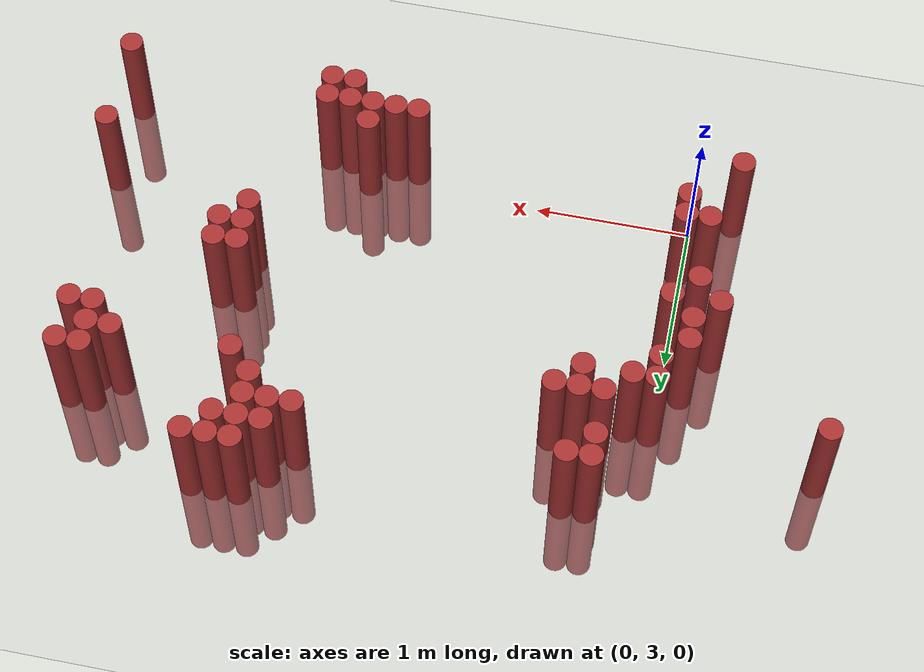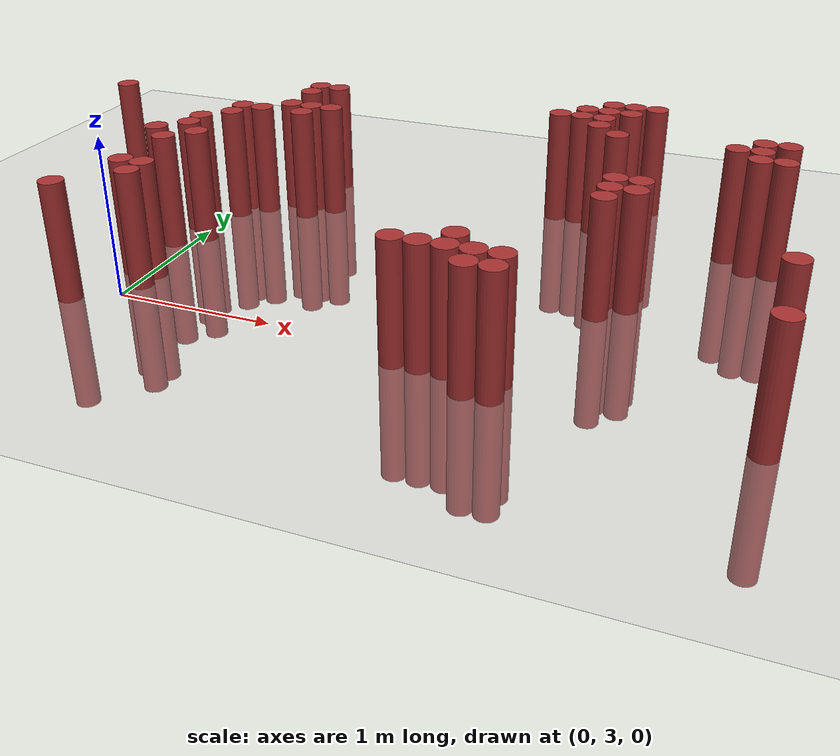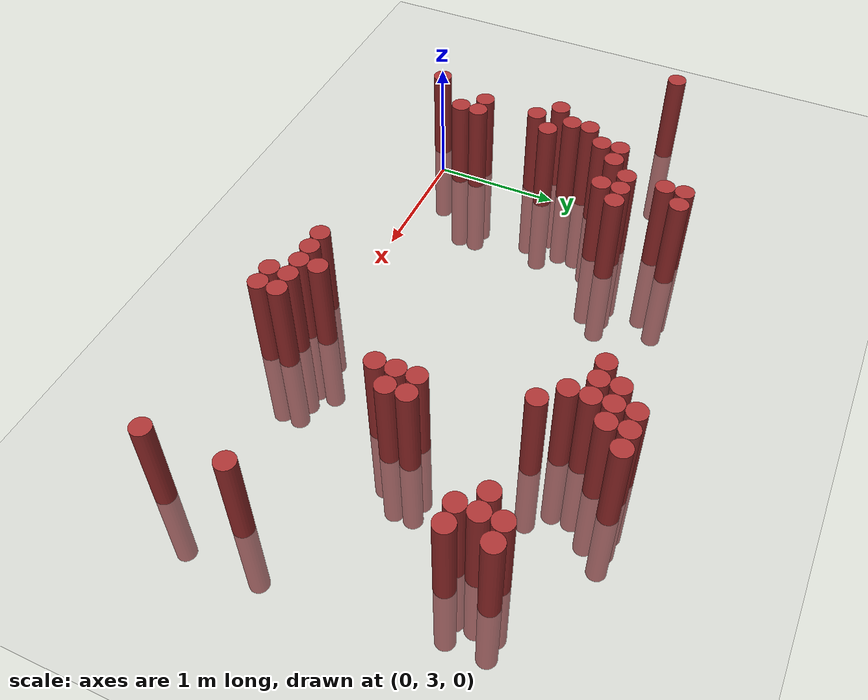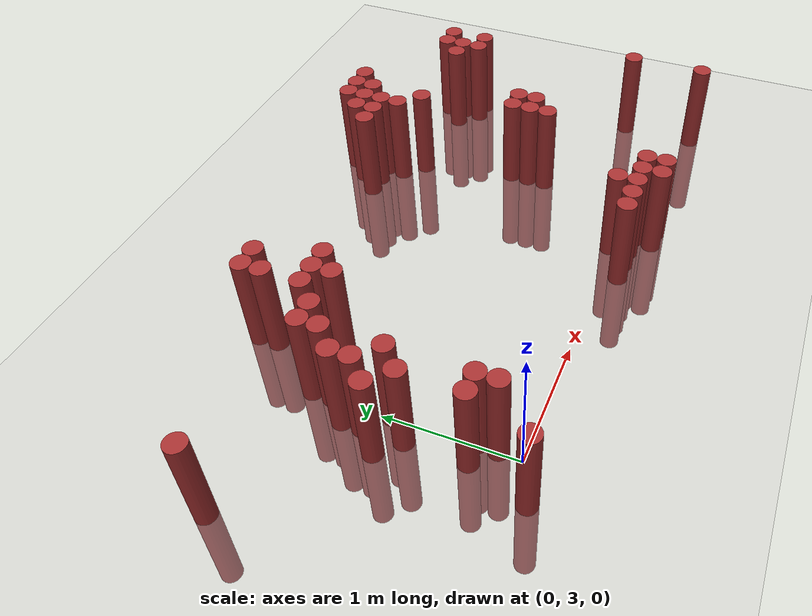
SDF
<sdf version="1.6">
 <world name="default">
  <model name="ground_plane">
   <static>1</static>
   <link name="link">
    <collision name="collision">
     <geometry><plane><normal>0 0 1</normal><size>100 100</size></plane></geometry>
     <surface><friction><ode><mu>100</mu><mu2>50</mu2></ode></friction></surface>
    </collision>
    <visual name="visual">
     <cast_shadows>0</cast_shadows>
     <geometry><plane><normal>0 0 1</normal><size>100 100</size></plane></geometry>
     <material>
      <script><uri>file://media/materials/scripts/gazebo.material</uri><name>Gazebo/Grey</name></script>
     </material>
    </visual>
   </link>
  </model>
  <model name="unit_cylinder_330">
   <static>1</static>
   <pose>-1.025000 4.675000 0.000000 0.000000 0.000000 0.000000</pose>
   <link name="link">
    <inertial>
     <mass>1</mass>
     <inertia><ixx>0.145833</ixx><ixy>0</ixy><ixz>0</ixz><iyy>0.145833</iyy><iyz>0</iyz><izz>0.125</izz></inertia>
    </inertial>
    <collision name="collision">
     <geometry><cylinder><radius>0.075000</radius><length>1.5</length></cylinder></geometry>
    </collision>
    <visual name="visual">
     <geometry><cylinder><radius>0.075000</radius><length>1.5</length></cylinder></geometry>
     <material>
      <ambient>0.648000 0.192000 0.192000 1</ambient>
      <diffuse>0.648000 0.192000 0.192000 1</diffuse>
     </material>
     <material>
      <script><name>Gazebo/Grey</name><uri>file://media/materials/scripts/gazebo.material</uri></script>
     </material>
    </visual>
   </link>
  </model>
  <model name="unit_cylinder_336">
   <static>1</static>
   <pose>-0.275000 2.875000 0.000000 0.000000 0.000000 0.000000</pose>
   <link name="link">
    <inertial>
     <mass>1</mass>
     <inertia><ixx>0.145833</ixx><ixy>0</ixy><ixz>0</ixz><iyy>0.145833</iyy><iyz>0</iyz><izz>0.125</izz></inertia>
    </inertial>
    <collision name="collision">
     <geometry><cylinder><radius>0.075000</radius><length>1.5</length></cylinder></geometry>
    </collision>
    <visual name="visual">
     <geometry><cylinder><radius>0.075000</radius><length>1.5</length></cylinder></geometry>
     <material>
      <ambient>0.648000 0.192000 0.192000 1</ambient>
      <diffuse>0.648000 0.192000 0.192000 1</diffuse>
     </material>
     <material>
      <script><name>Gazebo/Grey</name><uri>file://media/materials/scripts/gazebo.material</uri></script>
     </material>
    </visual>
   </link>
  </model>
  <model name="unit_cylinder_337">
   <static>1</static>
   <pose>-0.275000 3.925000 0.000000 0.000000 0.000000 0.000000</pose>
   <link name="link">
    <inertial>
     <mass>1</mass>
     <inertia><ixx>0.145833</ixx><ixy>0</ixy><ixz>0</ixz><iyy>0.145833</iyy><iyz>0</iyz><izz>0.125</izz></inertia>
    </inertial>
    <collision name="collision">
     <geometry><cylinder><radius>0.075000</radius><length>1.5</length></cylinder></geometry>
    </collision>
    <visual name="visual">
     <geometry><cylinder><radius>0.075000</radius><length>1.5</length></cylinder></geometry>
     <material>
      <ambient>0.648000 0.192000 0.192000 1</ambient>
      <diffuse>0.648000 0.192000 0.192000 1</diffuse>
     </material>
     <material>
      <script><name>Gazebo/Grey</name><uri>file://media/materials/scripts/gazebo.material</uri></script>
     </material>
    </visual>
   </link>
  </model>
  <model name="unit_cylinder_341">
   <static>1</static>
   <pose>-0.125000 3.325000 0.000000 0.000000 0.000000 0.000000</pose>
   <link name="link">
    <inertial>
     <mass>1</mass>
     <inertia><ixx>0.145833</ixx><ixy>0</ixy><ixz>0</ixz><iyy>0.145833</iyy><iyz>0</iyz><izz>0.125</izz></inertia>
    </inertial>
    <collision name="collision">
     <geometry><cylinder><radius>0.075000</radius><length>1.5</length></cylinder></geometry>
    </collision>
    <visual name="visual">
     <geometry><cylinder><radius>0.075000</radius><length>1.5</length></cylinder></geometry>
     <material>
      <ambient>0.648000 0.192000 0.192000 1</ambient>
      <diffuse>0.648000 0.192000 0.192000 1</diffuse>
     </material>
     <material>
      <script><name>Gazebo/Grey</name><uri>file://media/materials/scripts/gazebo.material</uri></script>
     </material>
    </visual>
   </link>
  </model>
  <model name="unit_cylinder_342">
   <static>1</static>
   <pose>-0.125000 3.775000 0.000000 0.000000 0.000000 0.000000</pose>
   <link name="link">
    <inertial>
     <mass>1</mass>
     <inertia><ixx>0.145833</ixx><ixy>0</ixy><ixz>0</ixz><iyy>0.145833</iyy><iyz>0</iyz><izz>0.125</izz></inertia>
    </inertial>
    <collision name="collision">
     <geometry><cylinder><radius>0.075000</radius><length>1.5</length></cylinder></geometry>
    </collision>
    <visual name="visual">
     <geometry><cylinder><radius>0.075000</radius><length>1.5</length></cylinder></geometry>
     <material>
      <ambient>0.648000 0.192000 0.192000 1</ambient>
      <diffuse>0.648000 0.192000 0.192000 1</diffuse>
     </material>
     <material>
      <script><name>Gazebo/Grey</name><uri>file://media/materials/scripts/gazebo.material</uri></script>
     </material>
    </visual>
   </link>
  </model>
  <model name="unit_cylinder_343">
   <static>1</static>
   <pose>-0.125000 4.075000 0.000000 0.000000 0.000000 0.000000</pose>
   <link name="link">
    <inertial>
     <mass>1</mass>
     <inertia><ixx>0.145833</ixx><ixy>0</ixy><ixz>0</ixz><iyy>0.145833</iyy><iyz>0</iyz><izz>0.125</izz></inertia>
    </inertial>
    <collision name="collision">
     <geometry><cylinder><radius>0.075000</radius><length>1.5</length></cylinder></geometry>
    </collision>
    <visual name="visual">
     <geometry><cylinder><radius>0.075000</radius><length>1.5</length></cylinder></geometry>
     <material>
      <ambient>0.648000 0.192000 0.192000 1</ambient>
      <diffuse>0.648000 0.192000 0.192000 1</diffuse>
     </material>
     <material>
      <script><name>Gazebo/Grey</name><uri>file://media/materials/scripts/gazebo.material</uri></script>
     </material>
    </visual>
   </link>
  </model>
  <model name="unit_cylinder_344">
   <static>1</static>
   <pose>-0.125000 4.225000 0.000000 0.000000 0.000000 0.000000</pose>
   <link name="link">
    <inertial>
     <mass>1</mass>
     <inertia><ixx>0.145833</ixx><ixy>0</ixy><ixz>0</ixz><iyy>0.145833</iyy><iyz>0</iyz><izz>0.125</izz></inertia>
    </inertial>
    <collision name="collision">
     <geometry><cylinder><radius>0.075000</radius><length>1.5</length></cylinder></geometry>
    </collision>
    <visual name="visual">
     <geometry><cylinder><radius>0.075000</radius><length>1.5</length></cylinder></geometry>
     <material>
      <ambient>0.648000 0.192000 0.192000 1</ambient>
      <diffuse>0.648000 0.192000 0.192000 1</diffuse>
     </material>
     <material>
      <script><name>Gazebo/Grey</name><uri>file://media/materials/scripts/gazebo.material</uri></script>
     </material>
    </visual>
   </link>
  </model>
  <model name="unit_cylinder_346">
   <static>1</static>
   <pose>0.025000 3.175000 0.000000 0.000000 0.000000 0.000000</pose>
   <link name="link">
    <inertial>
     <mass>1</mass>
     <inertia><ixx>0.145833</ixx><ixy>0</ixy><ixz>0</ixz><iyy>0.145833</iyy><iyz>0</iyz><izz>0.125</izz></inertia>
    </inertial>
    <collision name="collision">
     <geometry><cylinder><radius>0.075000</radius><length>1.5</length></cylinder></geometry>
    </collision>
    <visual name="visual">
     <geometry><cylinder><radius>0.075000</radius><length>1.5</length></cylinder></geometry>
     <material>
      <ambient>0.648000 0.192000 0.192000 1</ambient>
      <diffuse>0.648000 0.192000 0.192000 1</diffuse>
     </material>
     <material>
      <script><name>Gazebo/Grey</name><uri>file://media/materials/scripts/gazebo.material</uri></script>
     </material>
    </visual>
   </link>
  </model>
  <model name="unit_cylinder_347">
   <static>1</static>
   <pose>0.025000 3.325000 0.000000 0.000000 0.000000 0.000000</pose>
   <link name="link">
    <inertial>
     <mass>1</mass>
     <inertia><ixx>0.145833</ixx><ixy>0</ixy><ixz>0</ixz><iyy>0.145833</iyy><iyz>0</iyz><izz>0.125</izz></inertia>
    </inertial>
    <collision name="collision">
     <geometry><cylinder><radius>0.075000</radius><length>1.5</length></cylinder></geometry>
    </collision>
    <visual name="visual">
     <geometry><cylinder><radius>0.075000</radius><length>1.5</length></cylinder></geometry>
     <material>
      <ambient>0.648000 0.192000 0.192000 1</ambient>
      <diffuse>0.648000 0.192000 0.192000 1</diffuse>
     </material>
     <material>
      <script><name>Gazebo/Grey</name><uri>file://media/materials/scripts/gazebo.material</uri></script>
     </material>
    </visual>
   </link>
  </model>
  <model name="unit_cylinder_348">
   <static>1</static>
   <pose>0.025000 3.925000 0.000000 0.000000 0.000000 0.000000</pose>
   <link name="link">
    <inertial>
     <mass>1</mass>
     <inertia><ixx>0.145833</ixx><ixy>0</ixy><ixz>0</ixz><iyy>0.145833</iyy><iyz>0</iyz><izz>0.125</izz></inertia>
    </inertial>
    <collision name="collision">
     <geometry><cylinder><radius>0.075000</radius><length>1.5</length></cylinder></geometry>
    </collision>
    <visual name="visual">
     <geometry><cylinder><radius>0.075000</radius><length>1.5</length></cylinder></geometry>
     <material>
      <ambient>0.648000 0.192000 0.192000 1</ambient>
      <diffuse>0.648000 0.192000 0.192000 1</diffuse>
     </material>
     <material>
      <script><name>Gazebo/Grey</name><uri>file://media/materials/scripts/gazebo.material</uri></script>
     </material>
    </visual>
   </link>
  </model>
  <model name="unit_cylinder_349">
   <static>1</static>
   <pose>0.025000 4.375000 0.000000 0.000000 0.000000 0.000000</pose>
   <link name="link">
    <inertial>
     <mass>1</mass>
     <inertia><ixx>0.145833</ixx><ixy>0</ixy><ixz>0</ixz><iyy>0.145833</iyy><iyz>0</iyz><izz>0.125</izz></inertia>
    </inertial>
    <collision name="collision">
     <geometry><cylinder><radius>0.075000</radius><length>1.5</length></cylinder></geometry>
    </collision>
    <visual name="visual">
     <geometry><cylinder><radius>0.075000</radius><length>1.5</length></cylinder></geometry>
     <material>
      <ambient>0.648000 0.192000 0.192000 1</ambient>
      <diffuse>0.648000 0.192000 0.192000 1</diffuse>
     </material>
     <material>
      <script><name>Gazebo/Grey</name><uri>file://media/materials/scripts/gazebo.material</uri></script>
     </material>
    </visual>
   </link>
  </model>
  <model name="unit_cylinder_350">
   <static>1</static>
   <pose>0.025000 4.525000 0.000000 0.000000 0.000000 0.000000</pose>
   <link name="link">
    <inertial>
     <mass>1</mass>
     <inertia><ixx>0.145833</ixx><ixy>0</ixy><ixz>0</ixz><iyy>0.145833</iyy><iyz>0</iyz><izz>0.125</izz></inertia>
    </inertial>
    <collision name="collision">
     <geometry><cylinder><radius>0.075000</radius><length>1.5</length></cylinder></geometry>
    </collision>
    <visual name="visual">
     <geometry><cylinder><radius>0.075000</radius><length>1.5</length></cylinder></geometry>
     <material>
      <ambient>0.648000 0.192000 0.192000 1</ambient>
      <diffuse>0.648000 0.192000 0.192000 1</diffuse>
     </material>
     <material>
      <script><name>Gazebo/Grey</name><uri>file://media/materials/scripts/gazebo.material</uri></script>
     </material>
    </visual>
   </link>
  </model>
  <model name="unit_cylinder_351">
   <static>1</static>
   <pose>0.175000 4.525000 0.000000 0.000000 0.000000 0.000000</pose>
   <link name="link">
    <inertial>
     <mass>1</mass>
     <inertia><ixx>0.145833</ixx><ixy>0</ixy><ixz>0</ixz><iyy>0.145833</iyy><iyz>0</iyz><izz>0.125</izz></inertia>
    </inertial>
    <collision name="collision">
     <geometry><cylinder><radius>0.075000</radius><length>1.5</length></cylinder></geometry>
    </collision>
    <visual name="visual">
     <geometry><cylinder><radius>0.075000</radius><length>1.5</length></cylinder></geometry>
     <material>
      <ambient>0.648000 0.192000 0.192000 1</ambient>
      <diffuse>0.648000 0.192000 0.192000 1</diffuse>
     </material>
     <material>
      <script><name>Gazebo/Grey</name><uri>file://media/materials/scripts/gazebo.material</uri></script>
     </material>
    </visual>
   </link>
  </model>
  <model name="unit_cylinder_352">
   <static>1</static>
   <pose>0.325000 4.675000 0.000000 0.000000 0.000000 0.000000</pose>
   <link name="link">
    <inertial>
     <mass>1</mass>
     <inertia><ixx>0.145833</ixx><ixy>0</ixy><ixz>0</ixz><iyy>0.145833</iyy><iyz>0</iyz><izz>0.125</izz></inertia>
    </inertial>
    <collision name="collision">
     <geometry><cylinder><radius>0.075000</radius><length>1.5</length></cylinder></geometry>
    </collision>
    <visual name="visual">
     <geometry><cylinder><radius>0.075000</radius><length>1.5</length></cylinder></geometry>
     <material>
      <ambient>0.648000 0.192000 0.192000 1</ambient>
      <diffuse>0.648000 0.192000 0.192000 1</diffuse>
     </material>
     <material>
      <script><name>Gazebo/Grey</name><uri>file://media/materials/scripts/gazebo.material</uri></script>
     </material>
    </visual>
   </link>
  </model>
  <model name="unit_cylinder_353">
   <static>1</static>
   <pose>0.325000 4.975000 0.000000 0.000000 0.000000 0.000000</pose>
   <link name="link">
    <inertial>
     <mass>1</mass>
     <inertia><ixx>0.145833</ixx><ixy>0</ixy><ixz>0</ixz><iyy>0.145833</iyy><iyz>0</iyz><izz>0.125</izz></inertia>
    </inertial>
    <collision name="collision">
     <geometry><cylinder><radius>0.075000</radius><length>1.5</length></cylinder></geometry>
    </collision>
    <visual name="visual">
     <geometry><cylinder><radius>0.075000</radius><length>1.5</length></cylinder></geometry>
     <material>
      <ambient>0.648000 0.192000 0.192000 1</ambient>
      <diffuse>0.648000 0.192000 0.192000 1</diffuse>
     </material>
     <material>
      <script><name>Gazebo/Grey</name><uri>file://media/materials/scripts/gazebo.material</uri></script>
     </material>
    </visual>
   </link>
  </model>
  <model name="unit_cylinder_354">
   <static>1</static>
   <pose>0.325000 5.125000 0.000000 0.000000 0.000000 0.000000</pose>
   <link name="link">
    <inertial>
     <mass>1</mass>
     <inertia><ixx>0.145833</ixx><ixy>0</ixy><ixz>0</ixz><iyy>0.145833</iyy><iyz>0</iyz><izz>0.125</izz></inertia>
    </inertial>
    <collision name="collision">
     <geometry><cylinder><radius>0.075000</radius><length>1.5</length></cylinder></geometry>
    </collision>
    <visual name="visual">
     <geometry><cylinder><radius>0.075000</radius><length>1.5</length></cylinder></geometry>
     <material>
      <ambient>0.648000 0.192000 0.192000 1</ambient>
      <diffuse>0.648000 0.192000 0.192000 1</diffuse>
     </material>
     <material>
      <script><name>Gazebo/Grey</name><uri>file://media/materials/scripts/gazebo.material</uri></script>
     </material>
    </visual>
   </link>
  </model>
  <model name="unit_cylinder_355">
   <static>1</static>
   <pose>0.475000 4.525000 0.000000 0.000000 0.000000 0.000000</pose>
   <link name="link">
    <inertial>
     <mass>1</mass>
     <inertia><ixx>0.145833</ixx><ixy>0</ixy><ixz>0</ixz><iyy>0.145833</iyy><iyz>0</iyz><izz>0.125</izz></inertia>
    </inertial>
    <collision name="collision">
     <geometry><cylinder><radius>0.075000</radius><length>1.5</length></cylinder></geometry>
    </collision>
    <visual name="visual">
     <geometry><cylinder><radius>0.075000</radius><length>1.5</length></cylinder></geometry>
     <material>
      <ambient>0.648000 0.192000 0.192000 1</ambient>
      <diffuse>0.648000 0.192000 0.192000 1</diffuse>
     </material>
     <material>
      <script><name>Gazebo/Grey</name><uri>file://media/materials/scripts/gazebo.material</uri></script>
     </material>
    </visual>
   </link>
  </model>
  <model name="unit_cylinder_356">
   <static>1</static>
   <pose>0.475000 4.675000 0.000000 0.000000 0.000000 0.000000</pose>
   <link name="link">
    <inertial>
     <mass>1</mass>
     <inertia><ixx>0.145833</ixx><ixy>0</ixy><ixz>0</ixz><iyy>0.145833</iyy><iyz>0</iyz><izz>0.125</izz></inertia>
    </inertial>
    <collision name="collision">
     <geometry><cylinder><radius>0.075000</radius><length>1.5</length></cylinder></geometry>
    </collision>
    <visual name="visual">
     <geometry><cylinder><radius>0.075000</radius><length>1.5</length></cylinder></geometry>
     <material>
      <ambient>0.648000 0.192000 0.192000 1</ambient>
      <diffuse>0.648000 0.192000 0.192000 1</diffuse>
     </material>
     <material>
      <script><name>Gazebo/Grey</name><uri>file://media/materials/scripts/gazebo.material</uri></script>
     </material>
    </visual>
   </link>
  </model>
  <model name="unit_cylinder_357">
   <static>1</static>
   <pose>0.475000 5.125000 0.000000 0.000000 0.000000 0.000000</pose>
   <link name="link">
    <inertial>
     <mass>1</mass>
     <inertia><ixx>0.145833</ixx><ixy>0</ixy><ixz>0</ixz><iyy>0.145833</iyy><iyz>0</iyz><izz>0.125</izz></inertia>
    </inertial>
    <collision name="collision">
     <geometry><cylinder><radius>0.075000</radius><length>1.5</length></cylinder></geometry>
    </collision>
    <visual name="visual">
     <geometry><cylinder><radius>0.075000</radius><length>1.5</length></cylinder></geometry>
     <material>
      <ambient>0.648000 0.192000 0.192000 1</ambient>
      <diffuse>0.648000 0.192000 0.192000 1</diffuse>
     </material>
     <material>
      <script><name>Gazebo/Grey</name><uri>file://media/materials/scripts/gazebo.material</uri></script>
     </material>
    </visual>
   </link>
  </model>
  <model name="unit_cylinder_360">
   <static>1</static>
   <pose>0.625000 4.675000 0.000000 0.000000 0.000000 0.000000</pose>
   <link name="link">
    <inertial>
     <mass>1</mass>
     <inertia><ixx>0.145833</ixx><ixy>0</ixy><ixz>0</ixz><iyy>0.145833</iyy><iyz>0</iyz><izz>0.125</izz></inertia>
    </inertial>
    <collision name="collision">
     <geometry><cylinder><radius>0.075000</radius><length>1.5</length></cylinder></geometry>
    </collision>
    <visual name="visual">
     <geometry><cylinder><radius>0.075000</radius><length>1.5</length></cylinder></geometry>
     <material>
      <ambient>0.648000 0.192000 0.192000 1</ambient>
      <diffuse>0.648000 0.192000 0.192000 1</diffuse>
     </material>
     <material>
      <script><name>Gazebo/Grey</name><uri>file://media/materials/scripts/gazebo.material</uri></script>
     </material>
    </visual>
   </link>
  </model>
  <model name="unit_cylinder_380">
   <static>1</static>
   <pose>1.825000 2.875000 0.000000 0.000000 0.000000 0.000000</pose>
   <link name="link">
    <inertial>
     <mass>1</mass>
     <inertia><ixx>0.145833</ixx><ixy>0</ixy><ixz>0</ixz><iyy>0.145833</iyy><iyz>0</iyz><izz>0.125</izz></inertia>
    </inertial>
    <collision name="collision">
     <geometry><cylinder><radius>0.075000</radius><length>1.5</length></cylinder></geometry>
    </collision>
    <visual name="visual">
     <geometry><cylinder><radius>0.075000</radius><length>1.5</length></cylinder></geometry>
     <material>
      <ambient>0.648000 0.192000 0.192000 1</ambient>
      <diffuse>0.648000 0.192000 0.192000 1</diffuse>
     </material>
     <material>
      <script><name>Gazebo/Grey</name><uri>file://media/materials/scripts/gazebo.material</uri></script>
     </material>
    </visual>
   </link>
  </model>
  <model name="unit_cylinder_384">
   <static>1</static>
   <pose>1.975000 2.875000 0.000000 0.000000 0.000000 0.000000</pose>
   <link name="link">
    <inertial>
     <mass>1</mass>
     <inertia><ixx>0.145833</ixx><ixy>0</ixy><ixz>0</ixz><iyy>0.145833</iyy><iyz>0</iyz><izz>0.125</izz></inertia>
    </inertial>
    <collision name="collision">
     <geometry><cylinder><radius>0.075000</radius><length>1.5</length></cylinder></geometry>
    </collision>
    <visual name="visual">
     <geometry><cylinder><radius>0.075000</radius><length>1.5</length></cylinder></geometry>
     <material>
      <ambient>0.648000 0.192000 0.192000 1</ambient>
      <diffuse>0.648000 0.192000 0.192000 1</diffuse>
     </material>
     <material>
      <script><name>Gazebo/Grey</name><uri>file://media/materials/scripts/gazebo.material</uri></script>
     </material>
    </visual>
   </link>
  </model>
  <model name="unit_cylinder_387">
   <static>1</static>
   <pose>2.125000 2.875000 0.000000 0.000000 0.000000 0.000000</pose>
   <link name="link">
    <inertial>
     <mass>1</mass>
     <inertia><ixx>0.145833</ixx><ixy>0</ixy><ixz>0</ixz><iyy>0.145833</iyy><iyz>0</iyz><izz>0.125</izz></inertia>
    </inertial>
    <collision name="collision">
     <geometry><cylinder><radius>0.075000</radius><length>1.5</length></cylinder></geometry>
    </collision>
    <visual name="visual">
     <geometry><cylinder><radius>0.075000</radius><length>1.5</length></cylinder></geometry>
     <material>
      <ambient>0.648000 0.192000 0.192000 1</ambient>
      <diffuse>0.648000 0.192000 0.192000 1</diffuse>
     </material>
     <material>
      <script><name>Gazebo/Grey</name><uri>file://media/materials/scripts/gazebo.material</uri></script>
     </material>
    </visual>
   </link>
  </model>
  <model name="unit_cylinder_388">
   <static>1</static>
   <pose>2.125000 3.025000 0.000000 0.000000 0.000000 0.000000</pose>
   <link name="link">
    <inertial>
     <mass>1</mass>
     <inertia><ixx>0.145833</ixx><ixy>0</ixy><ixz>0</ixz><iyy>0.145833</iyy><iyz>0</iyz><izz>0.125</izz></inertia>
    </inertial>
    <collision name="collision">
     <geometry><cylinder><radius>0.075000</radius><length>1.5</length></cylinder></geometry>
    </collision>
    <visual name="visual">
     <geometry><cylinder><radius>0.075000</radius><length>1.5</length></cylinder></geometry>
     <material>
      <ambient>0.648000 0.192000 0.192000 1</ambient>
      <diffuse>0.648000 0.192000 0.192000 1</diffuse>
     </material>
     <material>
      <script><name>Gazebo/Grey</name><uri>file://media/materials/scripts/gazebo.material</uri></script>
     </material>
    </visual>
   </link>
  </model>
  <model name="unit_cylinder_389">
   <static>1</static>
   <pose>2.125000 5.125000 0.000000 0.000000 0.000000 0.000000</pose>
   <link name="link">
    <inertial>
     <mass>1</mass>
     <inertia><ixx>0.145833</ixx><ixy>0</ixy><ixz>0</ixz><iyy>0.145833</iyy><iyz>0</iyz><izz>0.125</izz></inertia>
    </inertial>
    <collision name="collision">
     <geometry><cylinder><radius>0.075000</radius><length>1.5</length></cylinder></geometry>
    </collision>
    <visual name="visual">
     <geometry><cylinder><radius>0.075000</radius><length>1.5</length></cylinder></geometry>
     <material>
      <ambient>0.648000 0.192000 0.192000 1</ambient>
      <diffuse>0.648000 0.192000 0.192000 1</diffuse>
     </material>
     <material>
      <script><name>Gazebo/Grey</name><uri>file://media/materials/scripts/gazebo.material</uri></script>
     </material>
    </visual>
   </link>
  </model>
  <model name="unit_cylinder_391">
   <static>1</static>
   <pose>2.275000 2.725000 0.000000 0.000000 0.000000 0.000000</pose>
   <link name="link">
    <inertial>
     <mass>1</mass>
     <inertia><ixx>0.145833</ixx><ixy>0</ixy><ixz>0</ixz><iyy>0.145833</iyy><iyz>0</iyz><izz>0.125</izz></inertia>
    </inertial>
    <collision name="collision">
     <geometry><cylinder><radius>0.075000</radius><length>1.5</length></cylinder></geometry>
    </collision>
    <visual name="visual">
     <geometry><cylinder><radius>0.075000</radius><length>1.5</length></cylinder></geometry>
     <material>
      <ambient>0.648000 0.192000 0.192000 1</ambient>
      <diffuse>0.648000 0.192000 0.192000 1</diffuse>
     </material>
     <material>
      <script><name>Gazebo/Grey</name><uri>file://media/materials/scripts/gazebo.material</uri></script>
     </material>
    </visual>
   </link>
  </model>
  <model name="unit_cylinder_392">
   <static>1</static>
   <pose>2.275000 2.875000 0.000000 0.000000 0.000000 0.000000</pose>
   <link name="link">
    <inertial>
     <mass>1</mass>
     <inertia><ixx>0.145833</ixx><ixy>0</ixy><ixz>0</ixz><iyy>0.145833</iyy><iyz>0</iyz><izz>0.125</izz></inertia>
    </inertial>
    <collision name="collision">
     <geometry><cylinder><radius>0.075000</radius><length>1.5</length></cylinder></geometry>
    </collision>
    <visual name="visual">
     <geometry><cylinder><radius>0.075000</radius><length>1.5</length></cylinder></geometry>
     <material>
      <ambient>0.648000 0.192000 0.192000 1</ambient>
      <diffuse>0.648000 0.192000 0.192000 1</diffuse>
     </material>
     <material>
      <script><name>Gazebo/Grey</name><uri>file://media/materials/scripts/gazebo.material</uri></script>
     </material>
    </visual>
   </link>
  </model>
  <model name="unit_cylinder_393">
   <static>1</static>
   <pose>2.275000 5.125000 0.000000 0.000000 0.000000 0.000000</pose>
   <link name="link">
    <inertial>
     <mass>1</mass>
     <inertia><ixx>0.145833</ixx><ixy>0</ixy><ixz>0</ixz><iyy>0.145833</iyy><iyz>0</iyz><izz>0.125</izz></inertia>
    </inertial>
    <collision name="collision">
     <geometry><cylinder><radius>0.075000</radius><length>1.5</length></cylinder></geometry>
    </collision>
    <visual name="visual">
     <geometry><cylinder><radius>0.075000</radius><length>1.5</length></cylinder></geometry>
     <material>
      <ambient>0.648000 0.192000 0.192000 1</ambient>
      <diffuse>0.648000 0.192000 0.192000 1</diffuse>
     </material>
     <material>
      <script><name>Gazebo/Grey</name><uri>file://media/materials/scripts/gazebo.material</uri></script>
     </material>
    </visual>
   </link>
  </model>
  <model name="unit_cylinder_394">
   <static>1</static>
   <pose>2.275000 5.275000 0.000000 0.000000 0.000000 0.000000</pose>
   <link name="link">
    <inertial>
     <mass>1</mass>
     <inertia><ixx>0.145833</ixx><ixy>0</ixy><ixz>0</ixz><iyy>0.145833</iyy><iyz>0</iyz><izz>0.125</izz></inertia>
    </inertial>
    <collision name="collision">
     <geometry><cylinder><radius>0.075000</radius><length>1.5</length></cylinder></geometry>
    </collision>
    <visual name="visual">
     <geometry><cylinder><radius>0.075000</radius><length>1.5</length></cylinder></geometry>
     <material>
      <ambient>0.648000 0.192000 0.192000 1</ambient>
      <diffuse>0.648000 0.192000 0.192000 1</diffuse>
     </material>
     <material>
      <script><name>Gazebo/Grey</name><uri>file://media/materials/scripts/gazebo.material</uri></script>
     </material>
    </visual>
   </link>
  </model>
  <model name="unit_cylinder_395">
   <static>1</static>
   <pose>2.425000 2.725000 0.000000 0.000000 0.000000 0.000000</pose>
   <link name="link">
    <inertial>
     <mass>1</mass>
     <inertia><ixx>0.145833</ixx><ixy>0</ixy><ixz>0</ixz><iyy>0.145833</iyy><iyz>0</iyz><izz>0.125</izz></inertia>
    </inertial>
    <collision name="collision">
     <geometry><cylinder><radius>0.075000</radius><length>1.5</length></cylinder></geometry>
    </collision>
    <visual name="visual">
     <geometry><cylinder><radius>0.075000</radius><length>1.5</length></cylinder></geometry>
     <material>
      <ambient>0.648000 0.192000 0.192000 1</ambient>
      <diffuse>0.648000 0.192000 0.192000 1</diffuse>
     </material>
     <material>
      <script><name>Gazebo/Grey</name><uri>file://media/materials/scripts/gazebo.material</uri></script>
     </material>
    </visual>
   </link>
  </model>
  <model name="unit_cylinder_396">
   <static>1</static>
   <pose>2.425000 2.875000 0.000000 0.000000 0.000000 0.000000</pose>
   <link name="link">
    <inertial>
     <mass>1</mass>
     <inertia><ixx>0.145833</ixx><ixy>0</ixy><ixz>0</ixz><iyy>0.145833</iyy><iyz>0</iyz><izz>0.125</izz></inertia>
    </inertial>
    <collision name="collision">
     <geometry><cylinder><radius>0.075000</radius><length>1.5</length></cylinder></geometry>
    </collision>
    <visual name="visual">
     <geometry><cylinder><radius>0.075000</radius><length>1.5</length></cylinder></geometry>
     <material>
      <ambient>0.648000 0.192000 0.192000 1</ambient>
      <diffuse>0.648000 0.192000 0.192000 1</diffuse>
     </material>
     <material>
      <script><name>Gazebo/Grey</name><uri>file://media/materials/scripts/gazebo.material</uri></script>
     </material>
    </visual>
   </link>
  </model>
  <model name="unit_cylinder_397">
   <static>1</static>
   <pose>2.425000 4.975000 0.000000 0.000000 0.000000 0.000000</pose>
   <link name="link">
    <inertial>
     <mass>1</mass>
     <inertia><ixx>0.145833</ixx><ixy>0</ixy><ixz>0</ixz><iyy>0.145833</iyy><iyz>0</iyz><izz>0.125</izz></inertia>
    </inertial>
    <collision name="collision">
     <geometry><cylinder><radius>0.075000</radius><length>1.5</length></cylinder></geometry>
    </collision>
    <visual name="visual">
     <geometry><cylinder><radius>0.075000</radius><length>1.5</length></cylinder></geometry>
     <material>
      <ambient>0.648000 0.192000 0.192000 1</ambient>
      <diffuse>0.648000 0.192000 0.192000 1</diffuse>
     </material>
     <material>
      <script><name>Gazebo/Grey</name><uri>file://media/materials/scripts/gazebo.material</uri></script>
     </material>
    </visual>
   </link>
  </model>
  <model name="unit_cylinder_398">
   <static>1</static>
   <pose>2.425000 5.125000 0.000000 0.000000 0.000000 0.000000</pose>
   <link name="link">
    <inertial>
     <mass>1</mass>
     <inertia><ixx>0.145833</ixx><ixy>0</ixy><ixz>0</ixz><iyy>0.145833</iyy><iyz>0</iyz><izz>0.125</izz></inertia>
    </inertial>
    <collision name="collision">
     <geometry><cylinder><radius>0.075000</radius><length>1.5</length></cylinder></geometry>
    </collision>
    <visual name="visual">
     <geometry><cylinder><radius>0.075000</radius><length>1.5</length></cylinder></geometry>
     <material>
      <ambient>0.648000 0.192000 0.192000 1</ambient>
      <diffuse>0.648000 0.192000 0.192000 1</diffuse>
     </material>
     <material>
      <script><name>Gazebo/Grey</name><uri>file://media/materials/scripts/gazebo.material</uri></script>
     </material>
    </visual>
   </link>
  </model>
  <model name="unit_cylinder_399">
   <static>1</static>
   <pose>2.425000 5.275000 0.000000 0.000000 0.000000 0.000000</pose>
   <link name="link">
    <inertial>
     <mass>1</mass>
     <inertia><ixx>0.145833</ixx><ixy>0</ixy><ixz>0</ixz><iyy>0.145833</iyy><iyz>0</iyz><izz>0.125</izz></inertia>
    </inertial>
    <collision name="collision">
     <geometry><cylinder><radius>0.075000</radius><length>1.5</length></cylinder></geometry>
    </collision>
    <visual name="visual">
     <geometry><cylinder><radius>0.075000</radius><length>1.5</length></cylinder></geometry>
     <material>
      <ambient>0.648000 0.192000 0.192000 1</ambient>
      <diffuse>0.648000 0.192000 0.192000 1</diffuse>
     </material>
     <material>
      <script><name>Gazebo/Grey</name><uri>file://media/materials/scripts/gazebo.material</uri></script>
     </material>
    </visual>
   </link>
  </model>
  <model name="unit_cylinder_400">
   <static>1</static>
   <pose>2.425000 5.425000 0.000000 0.000000 0.000000 0.000000</pose>
   <link name="link">
    <inertial>
     <mass>1</mass>
     <inertia><ixx>0.145833</ixx><ixy>0</ixy><ixz>0</ixz><iyy>0.145833</iyy><iyz>0</iyz><izz>0.125</izz></inertia>
    </inertial>
    <collision name="collision">
     <geometry><cylinder><radius>0.075000</radius><length>1.5</length></cylinder></geometry>
    </collision>
    <visual name="visual">
     <geometry><cylinder><radius>0.075000</radius><length>1.5</length></cylinder></geometry>
     <material>
      <ambient>0.648000 0.192000 0.192000 1</ambient>
      <diffuse>0.648000 0.192000 0.192000 1</diffuse>
     </material>
     <material>
      <script><name>Gazebo/Grey</name><uri>file://media/materials/scripts/gazebo.material</uri></script>
     </material>
    </visual>
   </link>
  </model>
  <model name="unit_cylinder_402">
   <static>1</static>
   <pose>2.575000 4.825000 0.000000 0.000000 0.000000 0.000000</pose>
   <link name="link">
    <inertial>
     <mass>1</mass>
     <inertia><ixx>0.145833</ixx><ixy>0</ixy><ixz>0</ixz><iyy>0.145833</iyy><iyz>0</iyz><izz>0.125</izz></inertia>
    </inertial>
    <collision name="collision">
     <geometry><cylinder><radius>0.075000</radius><length>1.5</length></cylinder></geometry>
    </collision>
    <visual name="visual">
     <geometry><cylinder><radius>0.075000</radius><length>1.5</length></cylinder></geometry>
     <material>
      <ambient>0.648000 0.192000 0.192000 1</ambient>
      <diffuse>0.648000 0.192000 0.192000 1</diffuse>
     </material>
     <material>
      <script><name>Gazebo/Grey</name><uri>file://media/materials/scripts/gazebo.material</uri></script>
     </material>
    </visual>
   </link>
  </model>
  <model name="unit_cylinder_403">
   <static>1</static>
   <pose>2.575000 5.275000 0.000000 0.000000 0.000000 0.000000</pose>
   <link name="link">
    <inertial>
     <mass>1</mass>
     <inertia><ixx>0.145833</ixx><ixy>0</ixy><ixz>0</ixz><iyy>0.145833</iyy><iyz>0</iyz><izz>0.125</izz></inertia>
    </inertial>
    <collision name="collision">
     <geometry><cylinder><radius>0.075000</radius><length>1.5</length></cylinder></geometry>
    </collision>
    <visual name="visual">
     <geometry><cylinder><radius>0.075000</radius><length>1.5</length></cylinder></geometry>
     <material>
      <ambient>0.648000 0.192000 0.192000 1</ambient>
      <diffuse>0.648000 0.192000 0.192000 1</diffuse>
     </material>
     <material>
      <script><name>Gazebo/Grey</name><uri>file://media/materials/scripts/gazebo.material</uri></script>
     </material>
    </visual>
   </link>
  </model>
  <model name="unit_cylinder_404">
   <static>1</static>
   <pose>2.575000 5.425000 0.000000 0.000000 0.000000 0.000000</pose>
   <link name="link">
    <inertial>
     <mass>1</mass>
     <inertia><ixx>0.145833</ixx><ixy>0</ixy><ixz>0</ixz><iyy>0.145833</iyy><iyz>0</iyz><izz>0.125</izz></inertia>
    </inertial>
    <collision name="collision">
     <geometry><cylinder><radius>0.075000</radius><length>1.5</length></cylinder></geometry>
    </collision>
    <visual name="visual">
     <geometry><cylinder><radius>0.075000</radius><length>1.5</length></cylinder></geometry>
     <material>
      <ambient>0.648000 0.192000 0.192000 1</ambient>
      <diffuse>0.648000 0.192000 0.192000 1</diffuse>
     </material>
     <material>
      <script><name>Gazebo/Grey</name><uri>file://media/materials/scripts/gazebo.material</uri></script>
     </material>
    </visual>
   </link>
  </model>
  <model name="unit_cylinder_410">
   <static>1</static>
   <pose>2.725000 3.775000 0.000000 0.000000 0.000000 0.000000</pose>
   <link name="link">
    <inertial>
     <mass>1</mass>
     <inertia><ixx>0.145833</ixx><ixy>0</ixy><ixz>0</ixz><iyy>0.145833</iyy><iyz>0</iyz><izz>0.125</izz></inertia>
    </inertial>
    <collision name="collision">
     <geometry><cylinder><radius>0.075000</radius><length>1.5</length></cylinder></geometry>
    </collision>
    <visual name="visual">
     <geometry><cylinder><radius>0.075000</radius><length>1.5</length></cylinder></geometry>
     <material>
      <ambient>0.648000 0.192000 0.192000 1</ambient>
      <diffuse>0.648000 0.192000 0.192000 1</diffuse>
     </material>
     <material>
      <script><name>Gazebo/Grey</name><uri>file://media/materials/scripts/gazebo.material</uri></script>
     </material>
    </visual>
   </link>
  </model>
  <model name="unit_cylinder_411">
   <static>1</static>
   <pose>2.725000 3.925000 0.000000 0.000000 0.000000 0.000000</pose>
   <link name="link">
    <inertial>
     <mass>1</mass>
     <inertia><ixx>0.145833</ixx><ixy>0</ixy><ixz>0</ixz><iyy>0.145833</iyy><iyz>0</iyz><izz>0.125</izz></inertia>
    </inertial>
    <collision name="collision">
     <geometry><cylinder><radius>0.075000</radius><length>1.5</length></cylinder></geometry>
    </collision>
    <visual name="visual">
     <geometry><cylinder><radius>0.075000</radius><length>1.5</length></cylinder></geometry>
     <material>
      <ambient>0.648000 0.192000 0.192000 1</ambient>
      <diffuse>0.648000 0.192000 0.192000 1</diffuse>
     </material>
     <material>
      <script><name>Gazebo/Grey</name><uri>file://media/materials/scripts/gazebo.material</uri></script>
     </material>
    </visual>
   </link>
  </model>
  <model name="unit_cylinder_412">
   <static>1</static>
   <pose>2.725000 4.075000 0.000000 0.000000 0.000000 0.000000</pose>
   <link name="link">
    <inertial>
     <mass>1</mass>
     <inertia><ixx>0.145833</ixx><ixy>0</ixy><ixz>0</ixz><iyy>0.145833</iyy><iyz>0</iyz><izz>0.125</izz></inertia>
    </inertial>
    <collision name="collision">
     <geometry><cylinder><radius>0.075000</radius><length>1.5</length></cylinder></geometry>
    </collision>
    <visual name="visual">
     <geometry><cylinder><radius>0.075000</radius><length>1.5</length></cylinder></geometry>
     <material>
      <ambient>0.648000 0.192000 0.192000 1</ambient>
      <diffuse>0.648000 0.192000 0.192000 1</diffuse>
     </material>
     <material>
      <script><name>Gazebo/Grey</name><uri>file://media/materials/scripts/gazebo.material</uri></script>
     </material>
    </visual>
   </link>
  </model>
  <model name="unit_cylinder_413">
   <static>1</static>
   <pose>2.725000 5.425000 0.000000 0.000000 0.000000 0.000000</pose>
   <link name="link">
    <inertial>
     <mass>1</mass>
     <inertia><ixx>0.145833</ixx><ixy>0</ixy><ixz>0</ixz><iyy>0.145833</iyy><iyz>0</iyz><izz>0.125</izz></inertia>
    </inertial>
    <collision name="collision">
     <geometry><cylinder><radius>0.075000</radius><length>1.5</length></cylinder></geometry>
    </collision>
    <visual name="visual">
     <geometry><cylinder><radius>0.075000</radius><length>1.5</length></cylinder></geometry>
     <material>
      <ambient>0.648000 0.192000 0.192000 1</ambient>
      <diffuse>0.648000 0.192000 0.192000 1</diffuse>
     </material>
     <material>
      <script><name>Gazebo/Grey</name><uri>file://media/materials/scripts/gazebo.material</uri></script>
     </material>
    </visual>
   </link>
  </model>
  <model name="unit_cylinder_420">
   <static>1</static>
   <pose>2.875000 3.925000 0.000000 0.000000 0.000000 0.000000</pose>
   <link name="link">
    <inertial>
     <mass>1</mass>
     <inertia><ixx>0.145833</ixx><ixy>0</ixy><ixz>0</ixz><iyy>0.145833</iyy><iyz>0</iyz><izz>0.125</izz></inertia>
    </inertial>
    <collision name="collision">
     <geometry><cylinder><radius>0.075000</radius><length>1.5</length></cylinder></geometry>
    </collision>
    <visual name="visual">
     <geometry><cylinder><radius>0.075000</radius><length>1.5</length></cylinder></geometry>
     <material>
      <ambient>0.648000 0.192000 0.192000 1</ambient>
      <diffuse>0.648000 0.192000 0.192000 1</diffuse>
     </material>
     <material>
      <script><name>Gazebo/Grey</name><uri>file://media/materials/scripts/gazebo.material</uri></script>
     </material>
    </visual>
   </link>
  </model>
  <model name="unit_cylinder_421">
   <static>1</static>
   <pose>2.875000 4.075000 0.000000 0.000000 0.000000 0.000000</pose>
   <link name="link">
    <inertial>
     <mass>1</mass>
     <inertia><ixx>0.145833</ixx><ixy>0</ixy><ixz>0</ixz><iyy>0.145833</iyy><iyz>0</iyz><izz>0.125</izz></inertia>
    </inertial>
    <collision name="collision">
     <geometry><cylinder><radius>0.075000</radius><length>1.5</length></cylinder></geometry>
    </collision>
    <visual name="visual">
     <geometry><cylinder><radius>0.075000</radius><length>1.5</length></cylinder></geometry>
     <material>
      <ambient>0.648000 0.192000 0.192000 1</ambient>
      <diffuse>0.648000 0.192000 0.192000 1</diffuse>
     </material>
     <material>
      <script><name>Gazebo/Grey</name><uri>file://media/materials/scripts/gazebo.material</uri></script>
     </material>
    </visual>
   </link>
  </model>
  <model name="unit_cylinder_431">
   <static>1</static>
   <pose>3.325000 4.825000 0.000000 0.000000 0.000000 0.000000</pose>
   <link name="link">
    <inertial>
     <mass>1</mass>
     <inertia><ixx>0.145833</ixx><ixy>0</ixy><ixz>0</ixz><iyy>0.145833</iyy><iyz>0</iyz><izz>0.125</izz></inertia>
    </inertial>
    <collision name="collision">
     <geometry><cylinder><radius>0.075000</radius><length>1.5</length></cylinder></geometry>
    </collision>
    <visual name="visual">
     <geometry><cylinder><radius>0.075000</radius><length>1.5</length></cylinder></geometry>
     <material>
      <ambient>0.648000 0.192000 0.192000 1</ambient>
      <diffuse>0.648000 0.192000 0.192000 1</diffuse>
     </material>
     <material>
      <script><name>Gazebo/Grey</name><uri>file://media/materials/scripts/gazebo.material</uri></script>
     </material>
    </visual>
   </link>
  </model>
  <model name="unit_cylinder_437">
   <static>1</static>
   <pose>3.475000 4.675000 0.000000 0.000000 0.000000 0.000000</pose>
   <link name="link">
    <inertial>
     <mass>1</mass>
     <inertia><ixx>0.145833</ixx><ixy>0</ixy><ixz>0</ixz><iyy>0.145833</iyy><iyz>0</iyz><izz>0.125</izz></inertia>
    </inertial>
    <collision name="collision">
     <geometry><cylinder><radius>0.075000</radius><length>1.5</length></cylinder></geometry>
    </collision>
    <visual name="visual">
     <geometry><cylinder><radius>0.075000</radius><length>1.5</length></cylinder></geometry>
     <material>
      <ambient>0.648000 0.192000 0.192000 1</ambient>
      <diffuse>0.648000 0.192000 0.192000 1</diffuse>
     </material>
     <material>
      <script><name>Gazebo/Grey</name><uri>file://media/materials/scripts/gazebo.material</uri></script>
     </material>
    </visual>
   </link>
  </model>
  <model name="unit_cylinder_438">
   <static>1</static>
   <pose>3.475000 4.825000 0.000000 0.000000 0.000000 0.000000</pose>
   <link name="link">
    <inertial>
     <mass>1</mass>
     <inertia><ixx>0.145833</ixx><ixy>0</ixy><ixz>0</ixz><iyy>0.145833</iyy><iyz>0</iyz><izz>0.125</izz></inertia>
    </inertial>
    <collision name="collision">
     <geometry><cylinder><radius>0.075000</radius><length>1.5</length></cylinder></geometry>
    </collision>
    <visual name="visual">
     <geometry><cylinder><radius>0.075000</radius><length>1.5</length></cylinder></geometry>
     <material>
      <ambient>0.648000 0.192000 0.192000 1</ambient>
      <diffuse>0.648000 0.192000 0.192000 1</diffuse>
     </material>
     <material>
      <script><name>Gazebo/Grey</name><uri>file://media/materials/scripts/gazebo.material</uri></script>
     </material>
    </visual>
   </link>
  </model>
  <model name="unit_cylinder_439">
   <static>1</static>
   <pose>3.475000 4.975000 0.000000 0.000000 0.000000 0.000000</pose>
   <link name="link">
    <inertial>
     <mass>1</mass>
     <inertia><ixx>0.145833</ixx><ixy>0</ixy><ixz>0</ixz><iyy>0.145833</iyy><iyz>0</iyz><izz>0.125</izz></inertia>
    </inertial>
    <collision name="collision">
     <geometry><cylinder><radius>0.075000</radius><length>1.5</length></cylinder></geometry>
    </collision>
    <visual name="visual">
     <geometry><cylinder><radius>0.075000</radius><length>1.5</length></cylinder></geometry>
     <material>
      <ambient>0.648000 0.192000 0.192000 1</ambient>
      <diffuse>0.648000 0.192000 0.192000 1</diffuse>
     </material>
     <material>
      <script><name>Gazebo/Grey</name><uri>file://media/materials/scripts/gazebo.material</uri></script>
     </material>
    </visual>
   </link>
  </model>
  <model name="unit_cylinder_446">
   <static>1</static>
   <pose>3.625000 4.675000 0.000000 0.000000 0.000000 0.000000</pose>
   <link name="link">
    <inertial>
     <mass>1</mass>
     <inertia><ixx>0.145833</ixx><ixy>0</ixy><ixz>0</ixz><iyy>0.145833</iyy><iyz>0</iyz><izz>0.125</izz></inertia>
    </inertial>
    <collision name="collision">
     <geometry><cylinder><radius>0.075000</radius><length>1.5</length></cylinder></geometry>
    </collision>
    <visual name="visual">
     <geometry><cylinder><radius>0.075000</radius><length>1.5</length></cylinder></geometry>
     <material>
      <ambient>0.648000 0.192000 0.192000 1</ambient>
      <diffuse>0.648000 0.192000 0.192000 1</diffuse>
     </material>
     <material>
      <script><name>Gazebo/Grey</name><uri>file://media/materials/scripts/gazebo.material</uri></script>
     </material>
    </visual>
   </link>
  </model>
  <model name="unit_cylinder_447">
   <static>1</static>
   <pose>3.625000 4.975000 0.000000 0.000000 0.000000 0.000000</pose>
   <link name="link">
    <inertial>
     <mass>1</mass>
     <inertia><ixx>0.145833</ixx><ixy>0</ixy><ixz>0</ixz><iyy>0.145833</iyy><iyz>0</iyz><izz>0.125</izz></inertia>
    </inertial>
    <collision name="collision">
     <geometry><cylinder><radius>0.075000</radius><length>1.5</length></cylinder></geometry>
    </collision>
    <visual name="visual">
     <geometry><cylinder><radius>0.075000</radius><length>1.5</length></cylinder></geometry>
     <material>
      <ambient>0.648000 0.192000 0.192000 1</ambient>
      <diffuse>0.648000 0.192000 0.192000 1</diffuse>
     </material>
     <material>
      <script><name>Gazebo/Grey</name><uri>file://media/materials/scripts/gazebo.material</uri></script>
     </material>
    </visual>
   </link>
  </model>
  <model name="unit_cylinder_464">
   <static>1</static>
   <pose>3.775000 2.725000 0.000000 0.000000 0.000000 0.000000</pose>
   <link name="link">
    <inertial>
     <mass>1</mass>
     <inertia><ixx>0.145833</ixx><ixy>0</ixy><ixz>0</ixz><iyy>0.145833</iyy><iyz>0</iyz><izz>0.125</izz></inertia>
    </inertial>
    <collision name="collision">
     <geometry><cylinder><radius>0.075000</radius><length>1.5</length></cylinder></geometry>
    </collision>
    <visual name="visual">
     <geometry><cylinder><radius>0.075000</radius><length>1.5</length></cylinder></geometry>
     <material>
      <ambient>0.648000 0.192000 0.192000 1</ambient>
      <diffuse>0.648000 0.192000 0.192000 1</diffuse>
     </material>
     <material>
      <script><name>Gazebo/Grey</name><uri>file://media/materials/scripts/gazebo.material</uri></script>
     </material>
    </visual>
   </link>
  </model>
  <model name="unit_cylinder_465">
   <static>1</static>
   <pose>3.775000 3.325000 0.000000 0.000000 0.000000 0.000000</pose>
   <link name="link">
    <inertial>
     <mass>1</mass>
     <inertia><ixx>0.145833</ixx><ixy>0</ixy><ixz>0</ixz><iyy>0.145833</iyy><iyz>0</iyz><izz>0.125</izz></inertia>
    </inertial>
    <collision name="collision">
     <geometry><cylinder><radius>0.075000</radius><length>1.5</length></cylinder></geometry>
    </collision>
    <visual name="visual">
     <geometry><cylinder><radius>0.075000</radius><length>1.5</length></cylinder></geometry>
     <material>
      <ambient>0.648000 0.192000 0.192000 1</ambient>
      <diffuse>0.648000 0.192000 0.192000 1</diffuse>
     </material>
     <material>
      <script><name>Gazebo/Grey</name><uri>file://media/materials/scripts/gazebo.material</uri></script>
     </material>
    </visual>
   </link>
  </model>
 </world>
</sdf>
